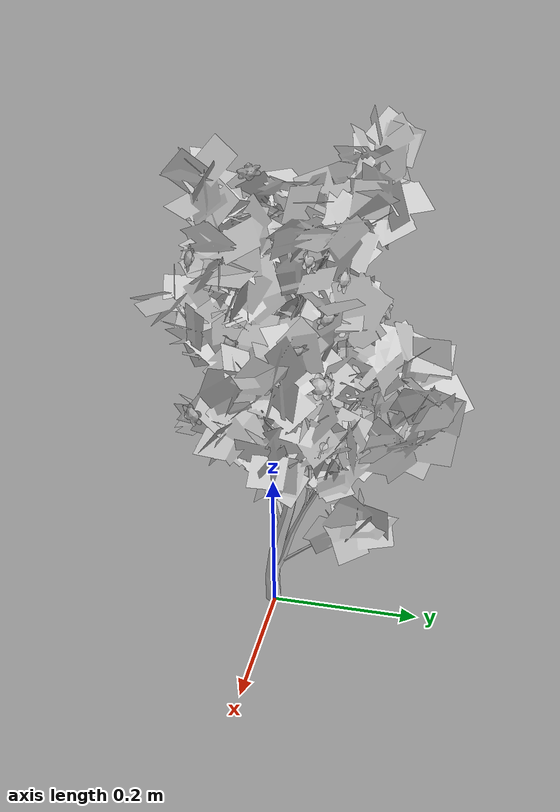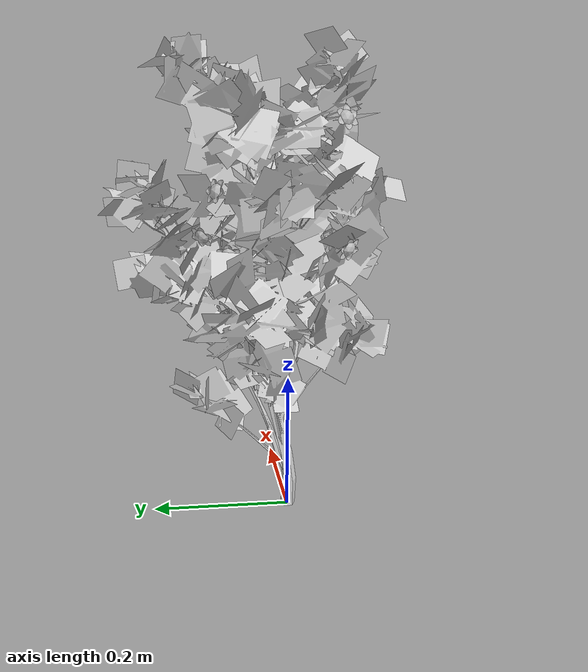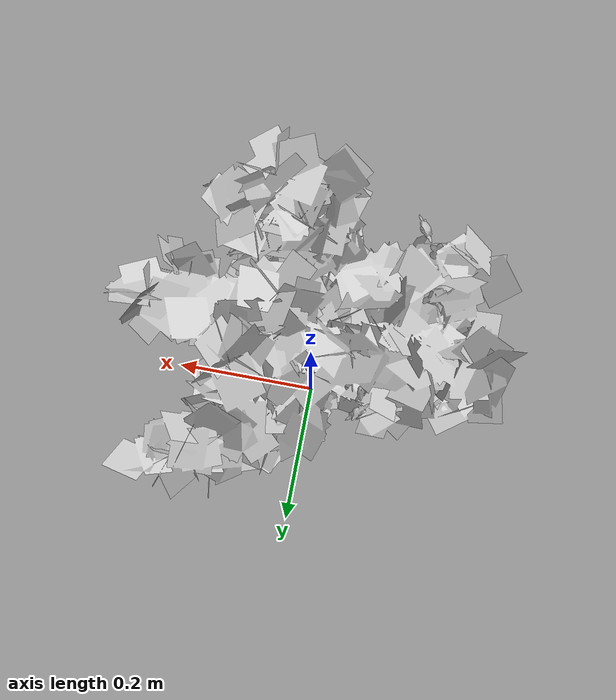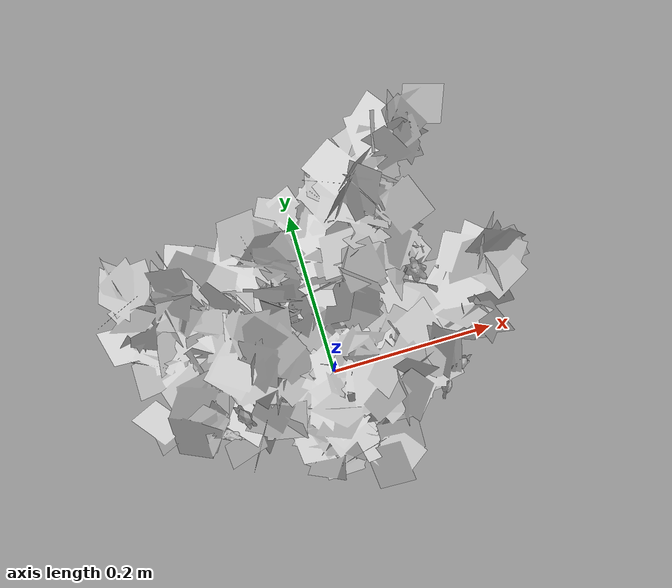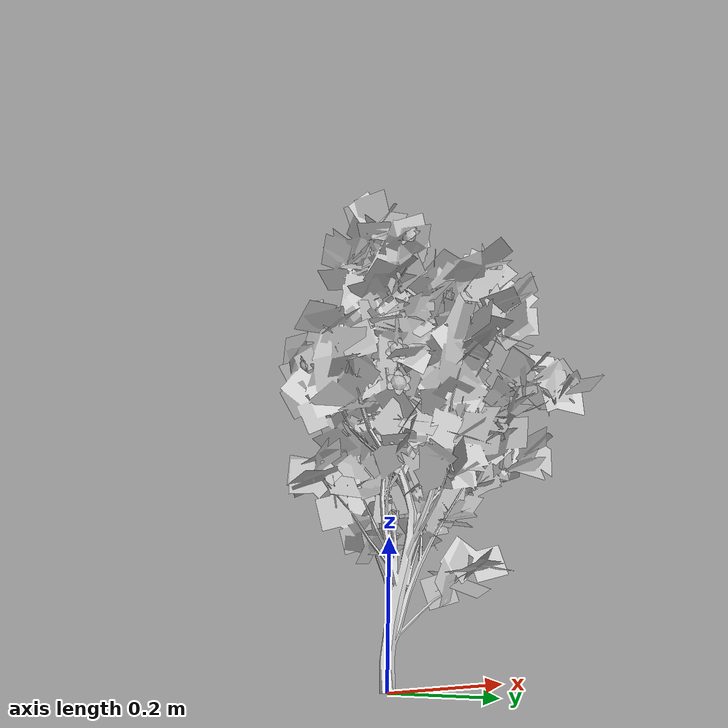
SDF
<?xml version="1.0" ?>
<sdf version="1.6">
  <model name="tree-flowers">
    <!--Skew-Seed:4174534792-->
    <static>true</static>
    <link name="link"/>
    <include>
      <uri>model://tree-mesh</uri>
      <pose>0 0 0 0 0 0</pose>
    </include>
    <joint name="tree_joint" type="fixed">
      <child>tree-mesh::link</child>
      <parent>link</parent>
    </joint>
    <include>
      <name>bramble_0</name>
      <uri>model://bramble</uri>
      <pose> -0.11639542628339548 0.07231522892359575 0.5537614986827557 -2.903013486538188 0.8632857395455417 0.0</pose>
    </include>
    <joint name="flower_joint_0" type="fixed">
      <child>bramble_0::flower_link</child>
      <parent>link</parent>
    </joint>
    <include>
      <name>bramble_1</name>
      <uri>model://bramble</uri>
      <pose> -0.14338437326242967 -0.05994425855525119 0.49681018285902656 -4.139331234493222 0.8119787392729378 0.0</pose>
    </include>
    <joint name="flower_joint_1" type="fixed">
      <child>bramble_1::flower_link</child>
      <parent>link</parent>
    </joint>
    <include>
      <name>bramble_2</name>
      <uri>model://bramble</uri>
      <pose> -0.13400691428471181 -0.055652525016002735 0.42560825162579086 -3.7354637622818547 1.1813888848471987 0.0</pose>
    </include>
    <joint name="flower_joint_2" type="fixed">
      <child>bramble_2::flower_link</child>
      <parent>link</parent>
    </joint>
    <include>
      <name>bramble_3</name>
      <uri>model://bramble</uri>
      <pose> 0.11933061988397728 -0.06257235006744263 0.5896933578606034 1.025705558531576 0.9743426885261728 0.0</pose>
    </include>
    <joint name="flower_joint_3" type="fixed">
      <child>bramble_3::flower_link</child>
      <parent>link</parent>
    </joint>
    <include>
      <name>bramble_4</name>
      <uri>model://bramble</uri>
      <pose> 0.10607025839809964 0.05491039265876093 0.47624388466288303 -0.49115318723729107 2.3038245440531266 0.0</pose>
    </include>
    <joint name="flower_joint_4" type="fixed">
      <child>bramble_4::flower_link</child>
      <parent>link</parent>
    </joint>
    <include>
      <name>bramble_5</name>
      <uri>model://bramble</uri>
      <pose> -0.07813468519524672 0.09372072127369313 0.4092262559001597 -2.9938077629478115 1.2000168746263293 0.0</pose>
    </include>
    <joint name="flower_joint_5" type="fixed">
      <child>bramble_5::flower_link</child>
      <parent>link</parent>
    </joint>
    <include>
      <name>bramble_6</name>
      <uri>model://bramble</uri>
      <pose> -0.14244114884622402 0.11263181478785529 0.5034061392461285 -2.280831714633654 2.1951088215229246 0.0</pose>
    </include>
    <joint name="flower_joint_6" type="fixed">
      <child>bramble_6::flower_link</child>
      <parent>link</parent>
    </joint>
    <include>
      <name>bramble_7</name>
      <uri>model://bramble</uri>
      <pose> 0.07208284078573565 0.08565954452986005 0.40689930173636973 -1.349853659989445 0.7918289257191085 0.0</pose>
    </include>
    <joint name="flower_joint_7" type="fixed">
      <child>bramble_7::flower_link</child>
      <parent>link</parent>
    </joint>
    <include>
      <name>bramble_8</name>
      <uri>model://bramble</uri>
      <pose> 0.09856862698771898 0.0822617943892249 0.4214422347557369 -0.14354358336940742 0.9417992169473665 0.0</pose>
    </include>
    <joint name="flower_joint_8" type="fixed">
      <child>bramble_8::flower_link</child>
      <parent>link</parent>
    </joint>
    <include>
      <name>bramble_9</name>
      <uri>model://bramble</uri>
      <pose> 0.06728653209324358 0.08418373769915731 0.5013187233879701 -0.797468466745412 1.9370824019025874 0.0</pose>
    </include>
    <joint name="flower_joint_9" type="fixed">
      <child>bramble_9::flower_link</child>
      <parent>link</parent>
    </joint>
    <include>
      <name>bramble_10</name>
      <uri>model://bramble</uri>
      <pose> -0.06228907890970617 0.07534325878140817 0.47883220275943694 -2.185057888355373 0.9042711994104352 0.0</pose>
    </include>
    <joint name="flower_joint_10" type="fixed">
      <child>bramble_10::flower_link</child>
      <parent>link</parent>
    </joint>
    <include>
      <name>bramble_11</name>
      <uri>model://bramble</uri>
      <pose> -0.07814110075631739 0.12723333652313368 0.43528663942806495 -2.54986545009466 0.9723002398428077 0.0</pose>
    </include>
    <joint name="flower_joint_11" type="fixed">
      <child>bramble_11::flower_link</child>
      <parent>link</parent>
    </joint>
    <include>
      <name>bramble_12</name>
      <uri>model://bramble</uri>
      <pose> 0.10708955122933408 -0.07207848606256916 0.3681132544358776 0.457318213310951 1.6365291199742682 0.0</pose>
    </include>
    <joint name="flower_joint_12" type="fixed">
      <child>bramble_12::flower_link</child>
      <parent>link</parent>
    </joint>
    <include>
      <name>bramble_13</name>
      <uri>model://bramble</uri>
      <pose> -0.11751867956764794 -0.053144256478348584 0.5909908019635921 -3.5884995920368983 2.05577256177132 0.0</pose>
    </include>
    <joint name="flower_joint_13" type="fixed">
      <child>bramble_13::flower_link</child>
      <parent>link</parent>
    </joint>
    <include>
      <name>bramble_14</name>
      <uri>model://bramble</uri>
      <pose> 0.0987033562933467 0.10836694996924397 0.5717234096157268 -1.297692920974844 1.4023654380154933 0.0</pose>
    </include>
    <joint name="flower_joint_14" type="fixed">
      <child>bramble_14::flower_link</child>
      <parent>link</parent>
    </joint>
    <include>
      <name>bramble_15</name>
      <uri>model://bramble</uri>
      <pose> 0.11626421503164464 0.09595057231103347 0.34258381742648225 -0.8888932486157826 0.9929109519923105 0.0</pose>
    </include>
    <joint name="flower_joint_15" type="fixed">
      <child>bramble_15::flower_link</child>
      <parent>link</parent>
    </joint>
    <include>
      <name>bramble_16</name>
      <uri>model://bramble</uri>
      <pose> 0.058934133674035966 0.05843989227282513 0.5714531655626094 -1.3027641506597307 1.140057496977523 0.0</pose>
    </include>
    <joint name="flower_joint_16" type="fixed">
      <child>bramble_16::flower_link</child>
      <parent>link</parent>
    </joint>
    <include>
      <name>bramble_17</name>
      <uri>model://bramble</uri>
      <pose> 0.05837772378728659 -0.03834360278537207 0.4491276848606151 0.19324852920061553 2.0435340433814604 0.0</pose>
    </include>
    <joint name="flower_joint_17" type="fixed">
      <child>bramble_17::flower_link</child>
      <parent>link</parent>
    </joint>
  </model>
</sdf>

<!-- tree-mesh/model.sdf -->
<sdf version="1.6">
  <model name="tree-mesh">
    <static>true</static>
    <link name="link">

      <collision name="collision">
        <geometry>
          <mesh>
            <uri>model://tree-mesh/meshes/new_tree.dae</uri>
            <scale>0.0625 0.0625 0.0625</scale>
          </mesh>
        </geometry>
      </collision>

      <!-- simplified collision for sake of speed since leaves shouldn't be blocking anyway -->

      <visual name="leaves">
        <geometry>
          <mesh>
            <uri>model://tree-mesh/meshes/leaves.dae</uri>
            <scale>0.0325 0.0325 0.0325</scale>
          </mesh>
        </geometry>
        <material>
          <script>
            <uri>model://tree-mesh/materials/scripts/</uri>
            <uri>model://tree-mesh/materials/textures/</uri>
            <name>NewTree/Branch</name>
          </script>
        </material>
      </visual>
      <visual name="bark">
        <geometry>
          <mesh>
            <uri>model://tree-mesh/meshes/bark.dae</uri>
            <scale>0.0325 0.0325 0.0325</scale>
          </mesh>
        </geometry>
        <material>
          <script>
            <uri>model://tree-mesh/materials/scripts/</uri>
            <uri>model://tree-mesh/materials/textures/</uri>
            <name>NewTree/Bark</name>
          </script>
        </material>
      </visual>
    </link>
  </model>
</sdf>

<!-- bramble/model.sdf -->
<sdf version="1.6">
  <model name="bramble">
    <static>true</static>
    <link name="flower_link">
      <collision name="body_collision">
        <geometry>
          <mesh>
            <uri>model://bramble/meshes/bramble.dae</uri>
            <scale>0.2 0.2 0.2</scale>
          </mesh>
        </geometry>
      </collision>
      <visual name="petals">
        <geometry>
          <mesh>
            <uri>model://bramble/meshes/bramble.dae</uri>
            <scale>0.2 0.2 0.2</scale>
            <submesh>
              <name>petal</name>
            </submesh>
          </mesh>
        </geometry>
        <material>
          <script>
            <uri>model://bramble/materials/scripts/</uri>
            <uri>model://bramble/materials/textures/</uri>
            <name>Bramble/Petal</name>
          </script>
        </material>
      </visual>
      <visual name="carpel">
        <geometry>
          <mesh>
            <uri>model://bramble/meshes/bramble.dae</uri>
            <scale>0.2 0.2 0.2</scale>
            <submesh>
              <name>carpel</name>
            </submesh>
          </mesh>
        </geometry>
        <material>
          <script>
            <uri>model://bramble/materials/scripts/</uri>
            <uri>model://bramble/materials/textures/</uri>
            <name>Bramble/Carpel</name>
          </script>
        </material>
      </visual>
      <visual name="stamen">
        <geometry>
          <mesh>
            <uri>model://bramble/meshes/bramble.dae</uri>
            <scale>0.2 0.2 0.2</scale>
            <submesh>
              <name>stamen</name>
            </submesh>
          </mesh>
        </geometry>
        <material>
          <script>
            <uri>model://bramble/materials/scripts/</uri>
            <uri>model://bramble/materials/textures/</uri>
            <name>Bramble/Stamen</name>
          </script>
        </material>
      </visual>
    </link>
  </model>
</sdf>
